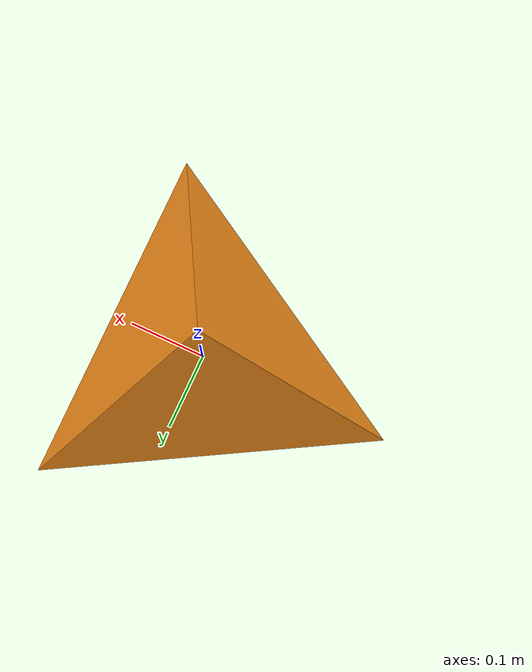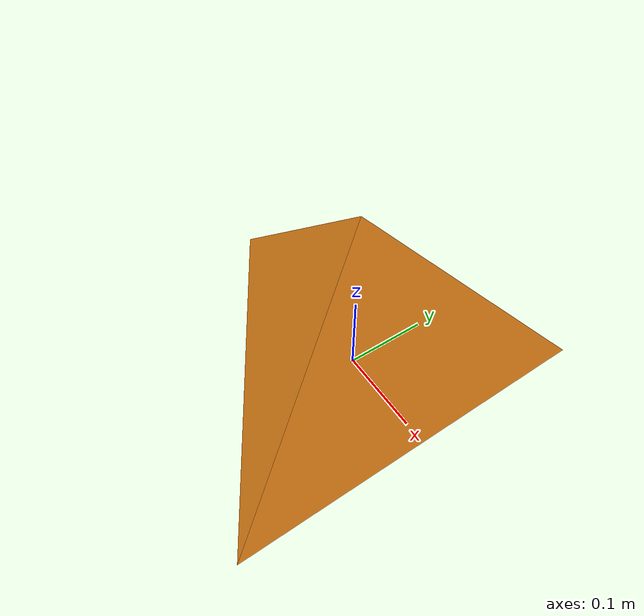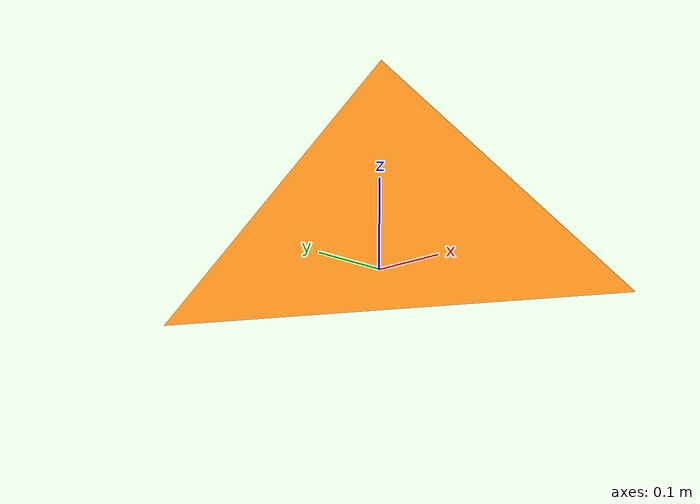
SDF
<?xml version='1.0'?>
<sdf version='1.4'>
  <model name="pyramid">
    <static>false</static>
    <link name="link">
      <collision name='collision'>
        <geometry>
	  <mesh>
	  	<uri>model://pyramid/meshes/model.dae</uri>
	  	<scale>1 1 1</scale>
	  </mesh>
        </geometry>
      </collision>

      <visual name='visual'>
        <geometry>
	  <mesh>
	  	<uri>model://pyramid/meshes/model.dae</uri>
	  	<scale>1 1 1</scale>
	  </mesh>
        </geometry>
				<material>
					<script>
						<uri>file://media/materials/scripts/gazebo.material</uri>
						<name>Gazebo/Orange</name>
					</script>
				</material>
      </visual>
    </link>

    <plugin name="model_push" filename="libmodel_push.so"/>

  </model>
</sdf>
